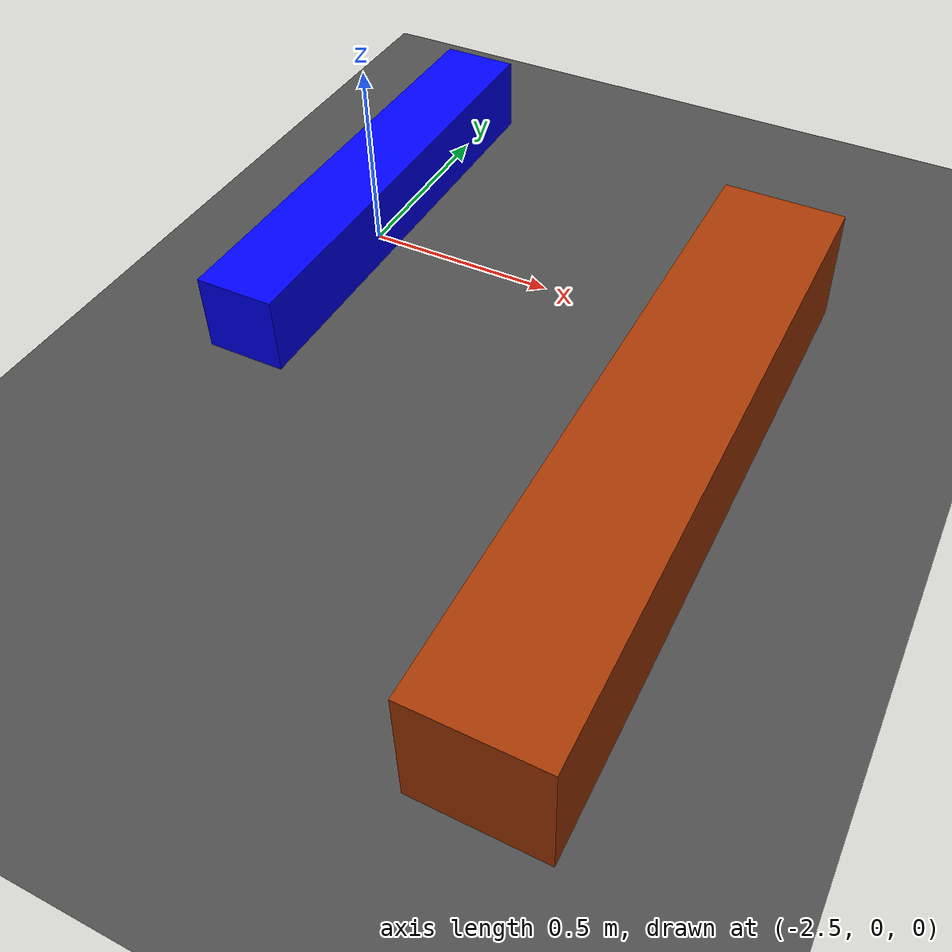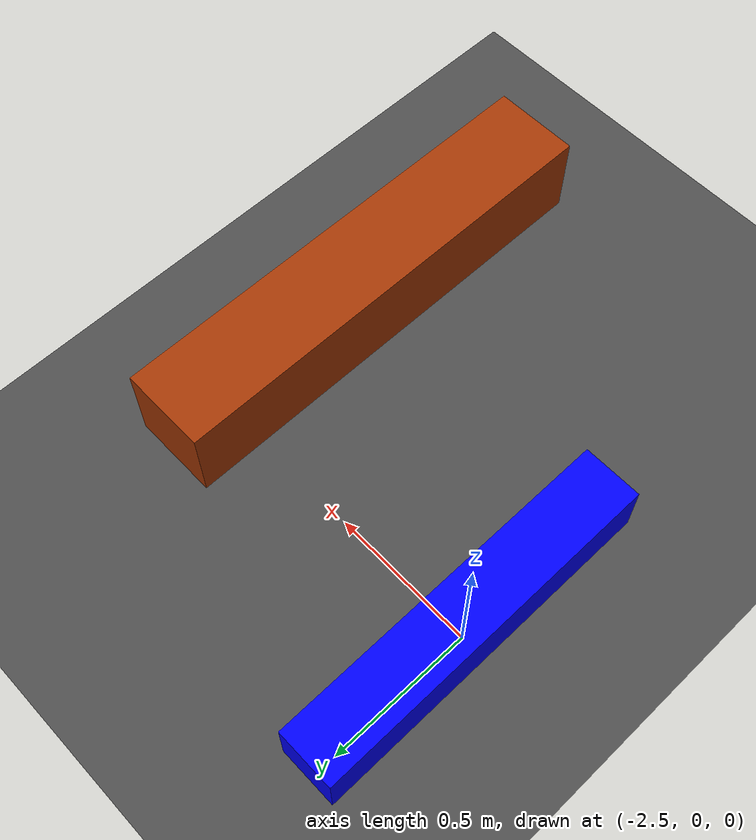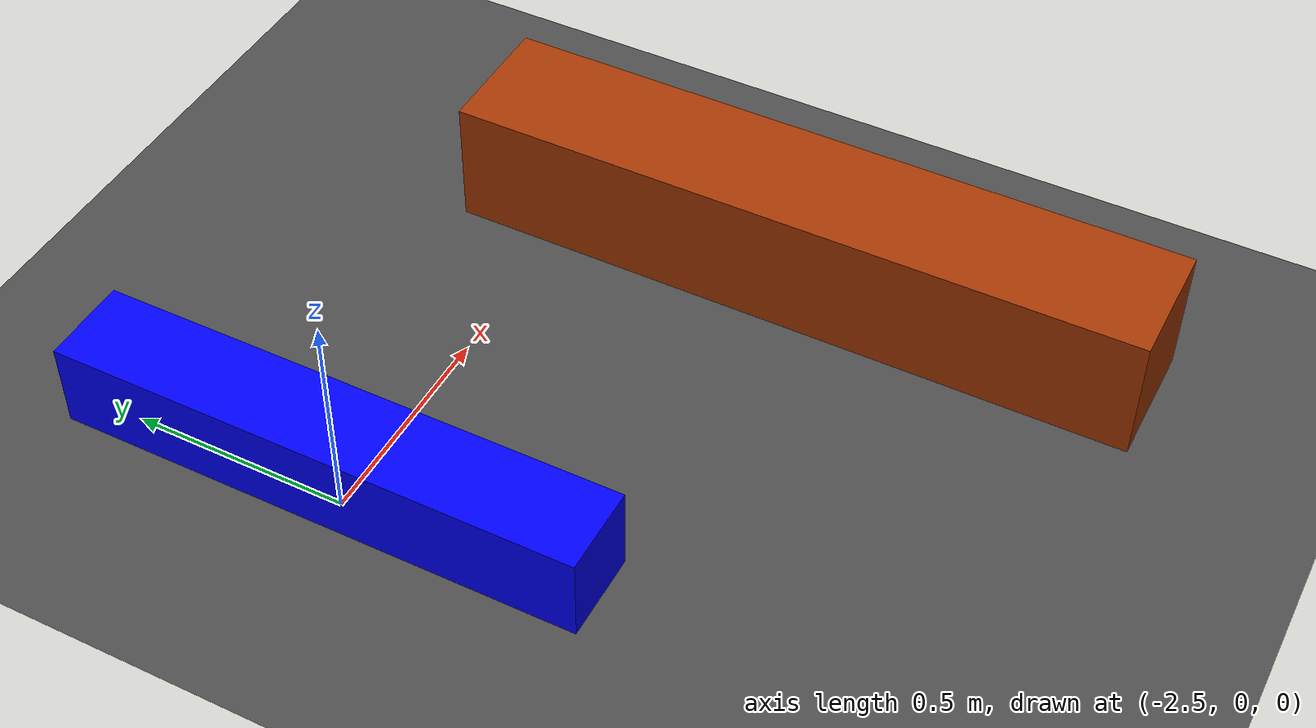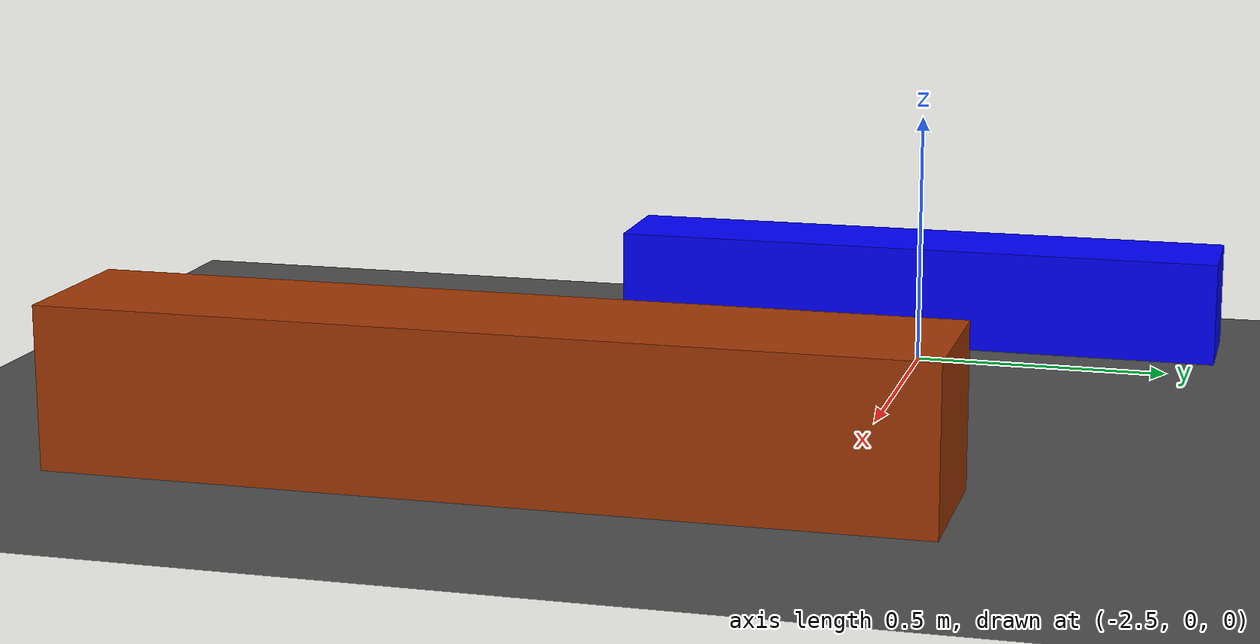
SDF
<?xml version="1.0" ?>
<sdf version='1.4'>
  <world name='default'>

    <physics type='ode'>
      <max_step_size>0.001</max_step_size>
      <real_time_factor>1</real_time_factor>
      <real_time_update_rate>1000</real_time_update_rate>
      <gravity>0 0 -9.8</gravity>
    </physics>

    <spherical_coordinates>
      <surface_model>EARTH_WGS84</surface_model>
      <latitude_deg>0</latitude_deg>
      <longitude_deg>0</longitude_deg>
      <elevation>0</elevation>
      <heading_deg>0</heading_deg>
    </spherical_coordinates>

    <!-- A global light source -->
   <scene>
      <sky>
        <clouds>
          <speed>12</speed>
        </clouds>
      </sky>
      <ambient>0.7 0.7 0.7 1</ambient>
      <background>0.1 0.1 0.1 1</background>
   </scene>

    <include>
      <uri>model://sun</uri>
    </include>

    <model name="ground_plane">
      <static>true</static>
      <link name="link">
        <collision name="collision">
          <geometry>
            <plane>
              <normal>0 0 1</normal>
              <size>8 6</size>
            </plane>
          </geometry>
          <surface>
            <friction>
              <ode>
                <mu>100</mu>
                <mu2>50</mu2>
              </ode>
            </friction>
          </surface>
        </collision>
        <visual name="visual">
          <cast_shadows>false</cast_shadows>
          <geometry>
            <plane>
              <normal>0 0 1</normal>
              <size>8 6</size>
            </plane>
          </geometry>
          <material>
            <script>
              <uri>model://asphalt_plane/materials/scripts</uri>
              <uri>model://asphalt_plane/materials/textures</uri>
              <name>vrc/asphalt</name>
            </script>
          </material>
        </visual>
      </link>
    </model>

    <model name="blue_brick" >
      <pose>-2.5 0 0.15 1.57 0 0</pose>
      <include>
        <uri>model://blue_brick</uri>
      </include>
    </model>

    <model name="construct_place_1" >
      <pose>-1.47 -0.57 0 0 0 1.57</pose>
      <include>
        <uri>model://uchannel_place_indoor</uri>
      </include>
    </model>
  </world>
</sdf>

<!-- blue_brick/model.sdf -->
<sdf version="1.4">
  <model name='blue_brick'>
    <pose>0 0 0 0 0 0</pose>
    <static>false</static>
    <link name='object_link'>
      <inertial>
        <mass>1.5</mass>
        <inertia> <!-- inertias are tricky to compute -->
          <!-- http://gazebosim.org/tutorials?tut=inertia&cat=build_robot -->
          <ixx>0.18426</ixx>       <!-- for a box: ixx = 0.083 * mass * (y*y + z*z) -->
          <ixy>0.0</ixy>         <!-- for a box: ixy = 0 -->
          <ixz>0.0</ixz>         <!-- for a box: ixz = 0 -->
          <iyy>0.18426</iyy>       <!-- for a box: iyy = 0.083 * mass * (x*x + z*z) -->
          <iyz>0.0</iyz>         <!-- for a box: iyz = 0 -->
          <izz>0.01</izz>       <!-- for a box: izz = 0.083 * mass * (x*x + y*y) -->
        </inertia>
      </inertial>
      <collision name='collision'>
        <geometry>
          <box>
            <size>0.2 0.2 1.2</size>
          </box>
        </geometry>
        <max_contacts>10</max_contacts>
        <surface>
          <friction>
            <ode>
              <mu>0.3</mu>
              <mu2>0.3</mu2>
            </ode>
          </friction>
        </surface>
      </collision>
      <visual name='visual'>
        <cast_shadows>0</cast_shadows>
        <geometry>
          <box>
            <size>0.2 0.2 1.2</size>
          </box>
        </geometry>
        <material>
          <ambient>0.0 0.0 1.0 1</ambient>
          <diffuse>0.0 0.0 1.0 1</diffuse>
          <specular>0.01 0.01 0.01 1</specular>
          <emissive>0 0 0 1</emissive>
        </material>
      </visual>
      <self_collide>0</self_collide>
      <kinematic>0</kinematic>
      <gravity>1</gravity>
    </link>
  </model>
</sdf>

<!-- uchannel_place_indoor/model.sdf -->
<sdf version="1.4">
  <model name='uchannel_place'>
    <static>1</static>
    <link name='link'>
      <pose>0 0 0 0 0 0</pose>
      <collision name='collision'>
        <geometry>
          <mesh>
            <uri>model://uchannel_place_indoor/mesh/uchannel_place_indoor_collision.dae</uri>
            <scale>1 1 1</scale>
          </mesh>
        </geometry>
      </collision>
      <visual name='visual'>
        <cast_shadows>1</cast_shadows>
        <transparency>0</transparency>
        <geometry>
          <mesh>
            <uri>model://uchannel_place_indoor/mesh/uchannel_place_indoor_visual.dae</uri>
            <scale>1 1 1</scale>
          </mesh>
        </geometry>
      </visual>
    </link>
  </model>
</sdf>
